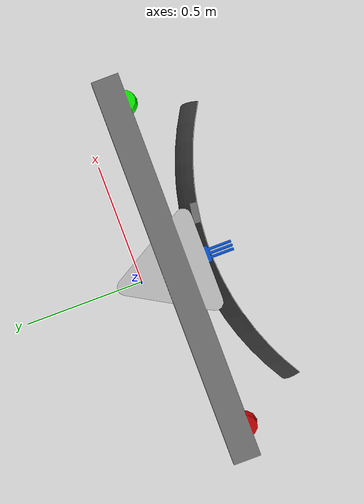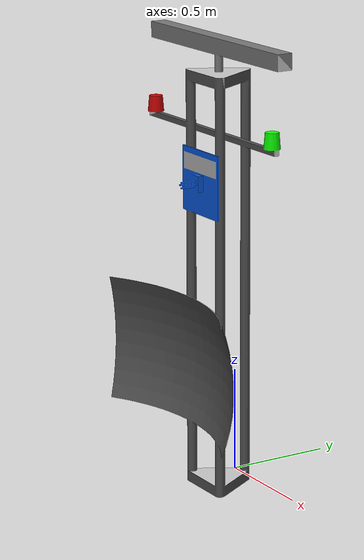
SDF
<sdf version='1.7'>
  <model name='mast'>
    <link name='mast'>
      <inertial>
        <pose>0 0 0 0 -0 0</pose>
        <mass>24.525</mass>
        <inertia>
          <ixx>13.322</ixx>
          <ixy>1.9287e-15</ixy>
          <ixz>6.1623e-16</ixz>
          <iyy>14.301</iyy>
          <iyz>0.028078</iyz>
          <izz>1.2555</izz>
        </inertia>
      </inertial>
      <collision name='mast_collision'>
        <pose>0 0 0 0 -0 0</pose>
        <geometry>
          <mesh>
            <scale>1 1 1</scale>
            <uri>model://mast/meshes/mast_colored.dae</uri>
          </mesh>
        </geometry>
      </collision>
      <visual name='mast_visual'>
        <pose>0 0 0 0 -0 0</pose>
        <geometry>
          <mesh>
            <scale>1 1 1</scale>
            <uri>model://mast/meshes/mast_colored.dae</uri>
          </mesh>
        </geometry>
      </visual>
    </link>
  </model>
</sdf>
